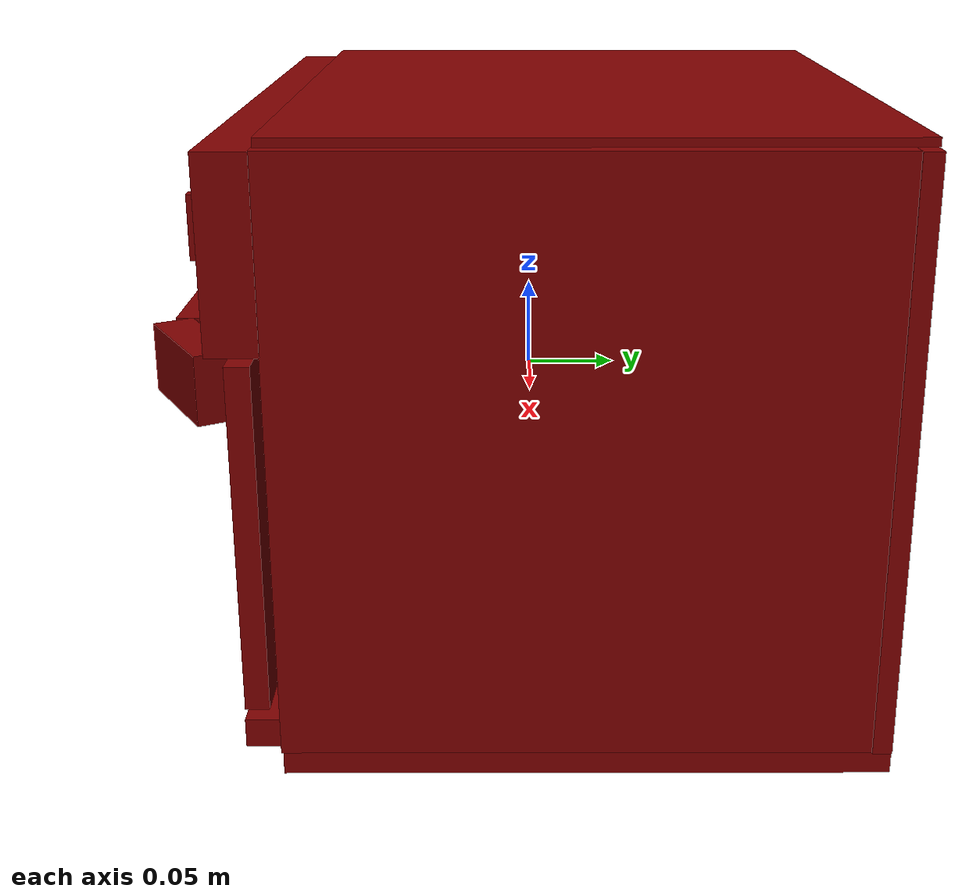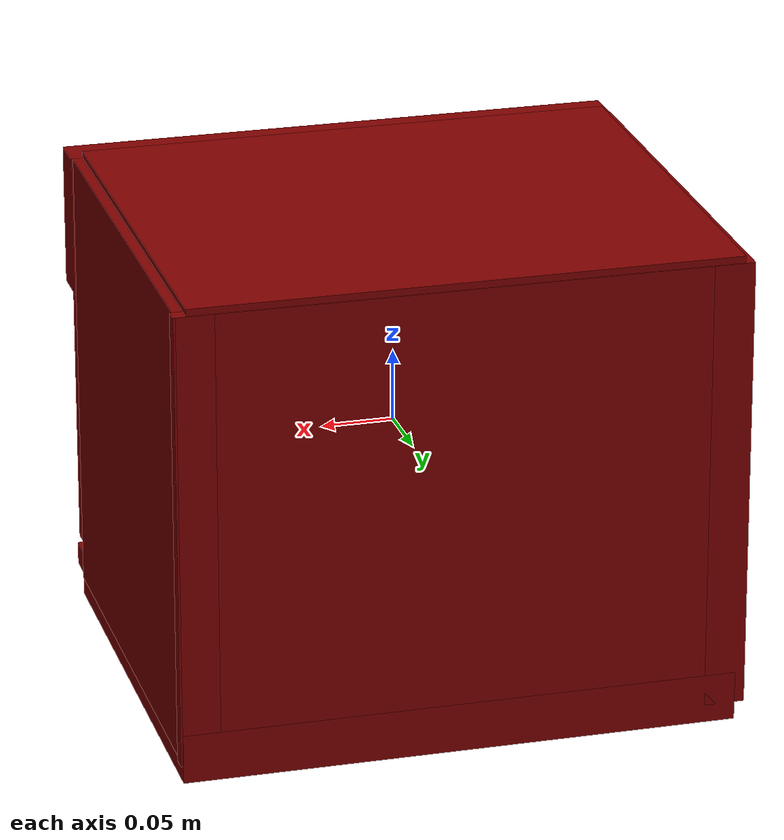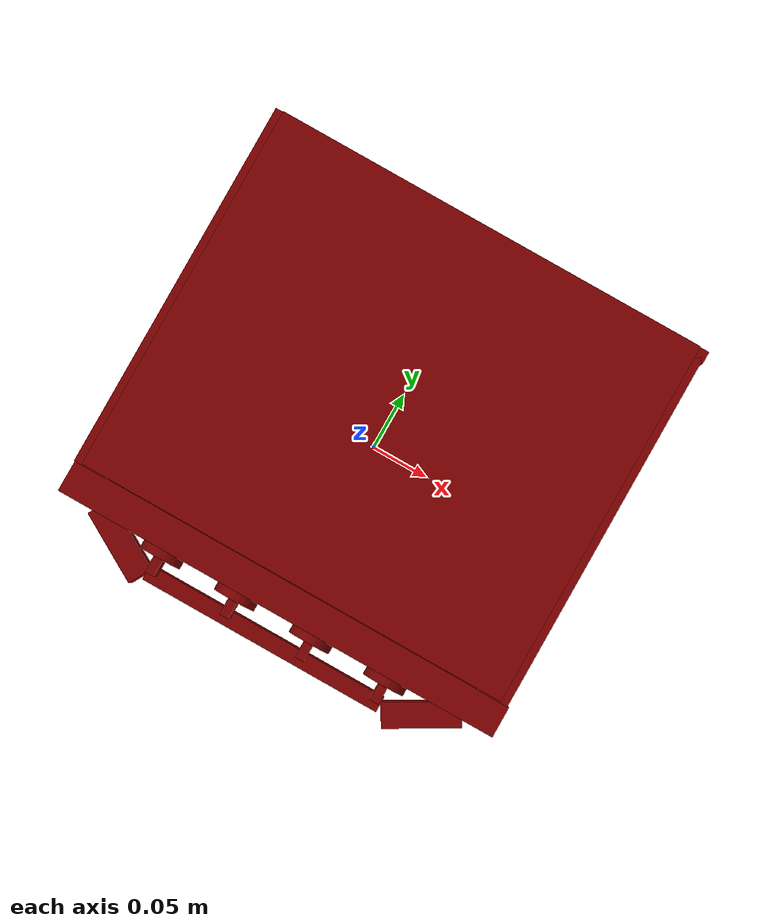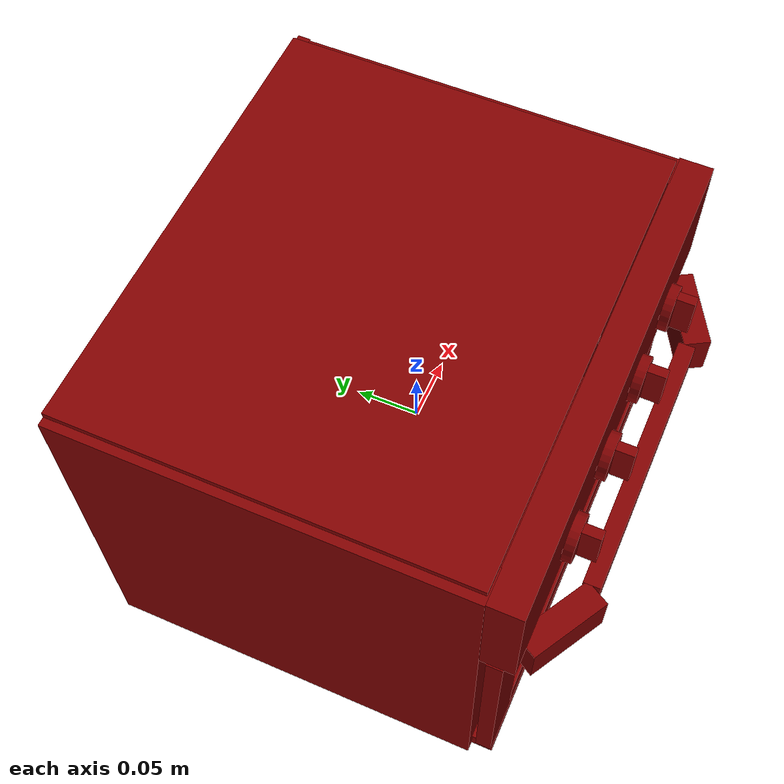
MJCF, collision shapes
<?xml version='1.0' encoding='UTF-8'?>
<mujoco model="model">
  <option timestep="0.002" gravity="0.0 0.0 -9.81"/>
  <compiler angle="radian"/>
  <asset>
    <mesh file="visuals/door.obj" name="door_vis"/>
    <mesh file="visuals/knob_doneness.obj" name="knob_doneness_vis"/>
    <mesh file="visuals/knob_function.obj" name="knob_function_vis"/>
    <mesh file="visuals/knob_temp.obj" name="knob_temp_vis"/>
    <mesh file="visuals/knob_time.obj" name="knob_time_vis"/>
    <mesh file="visuals/rack0.obj" name="rack0_vis"/>
    <mesh file="visuals/Body001.obj" name="Body001_vis"/>
    <mesh file="visuals/window.obj" name="window_vis"/>
    <texture file="visuals/T_BC001.png" name="Body001_material" type="2d"/>
    <material name="Body001_material" rgba="1 1 1 1.0" texture="Body001_material" shininess="0.241421377658844" specular="2"/>
    <texture file="visuals/T_BC001.png" name="door_material" type="2d"/>
    <material name="door_material" rgba="1 1 1 1.0" texture="door_material" shininess="0.141421377658844" specular="0.8"/>
    <material name="window_material" rgba="0.28266844153404236 0.28266844153404236 0.28266844153404236 0.699999988079071" shininess="0.5176590085029602" specular="0.3103448502657381"/>
    <texture file="visuals/T_BC001.png" name="knob_doneness_material" type="2d"/>
    <material name="knob_doneness_material" rgba="1 1 1 1.0" texture="knob_doneness_material" shininess="0.141421377658844" specular="0.3103448502657381"/>
    <texture file="visuals/T_BC001.png" name="knob_function_material" type="2d"/>
    <material name="knob_function_material" rgba="1 1 1 1.0" texture="knob_function_material" shininess="0.141421377658844" specular="0.3103448502657381"/>
    <texture file="visuals/T_BC001.png" name="knob_temp_material" type="2d"/>
    <material name="knob_temp_material" rgba="1 1 1 1.0" texture="knob_temp_material" shininess="0.141421377658844" specular="0.3103448502657381"/>
    <texture file="visuals/T_BC001.png" name="knob_time_material" type="2d"/>
    <material name="knob_time_material" rgba="1 1 1 1.0" texture="knob_time_material" shininess="0.141421377658844" specular="0.3103448502657381"/>
    <texture file="visuals/T_BC001.png" name="rack0_material" type="2d"/>
    <material name="rack0_material" rgba="1 1 1 1.0" texture="rack0_material" shininess="0.141421377658844" specular="0.3103448502657381"/>
  </asset>
  <default>
    <default class="visual">
      <geom conaffinity="0" contype="0" group="1" type="mesh"/>
    </default>
    <default class="collision">
      <geom group="0" rgba="0.5 0 0 0.5"/>
    </default>
    <default class="spawn">
      <geom group="0" rgba="1 1 1 0.5" contype="0" conaffinity="0"/>
      <site group="0" rgba="1 1 1 0.5"/>
    </default>
    <default class="region">
      <geom group="1" conaffinity="0" contype="0" rgba="0 1 0 0"/>
    </default>
  </default>
  <worldbody>
    <body>
      <body name="object">
        <geom mesh="Body001_vis" type="mesh" solimp="0.998 0.998 0.001" solref="0.001 1" friction="0.95 0.3 0.1" class="visual" material="Body001_material"/>
        <geom class="collision" type="box" pos="-0.00028474 0.02901746 0.16449785" size="0.18516673147678375 0.1568266600370407 0.002282035769894719" quat="1.0 0.0 0.0 0.0"/>
        <geom class="collision" type="box" pos="0.00380026 0.18074097 0.00575932" size="0.18925167620182037 0.005102730821818113 0.15594731271266937" quat="1.0 0.0 0.0 0.0"/>
        <geom class="collision" type="box" pos="-0.17825736 0.02847343 0.00575932" size="0.013867438770830631 0.1573706865310669 0.15594728291034698" quat="1.0 0.0 0.0 0.0"/>
        <geom class="collision" type="box" pos="0.17881460 0.02847343 0.00575932" size="0.012715711258351803 0.1573706567287445 0.1559472531080246" quat="1.0 0.0 0.0 0.0"/>
        <geom class="collision" type="box" pos="0.00291143 0.02898374 -0.14554366" size="0.18836267292499542 0.1568603515625 0.016933241859078407" quat="1.0 0.0 0.0 0.0"/>
        <geom class="collision" type="box" pos="0.00077400 -0.14165392 0.11288861" size="0.19217965006828308 0.013198900036513805 0.04881777614355087" quat="1.0 0.0 0.0 0.0"/>
        <geom class="collision" type="box" pos="0.00291143 -0.13772985 -0.13875678" size="0.18836256861686707 0.008808239363133907 0.007798697799444199" quat="1.0 0.0 0.0 0.0"/>
        <geom class="collision" type="box" pos="0.16464502 -0.06125135 -0.04518594" size="0.005745991133153439 0.042726825922727585 0.02104104496538639" quat="1.0 0.0 0.0 0.0"/>
        <geom class="collision" type="box" pos="0.16464502 0.10782969 -0.04518594" size="0.005745991133153439 0.042726825922727585 0.02104104496538639" quat="1.0 0.0 0.0 0.0"/>
        <geom class="collision" type="box" pos="0.16464502 -0.06125135 -0.08038233" size="0.005745991133153439 0.042726825922727585 0.014774486422538757" quat="1.0 0.0 0.0 0.0"/>
        <geom class="collision" type="box" pos="0.16464502 0.10782969 -0.08038233" size="0.005745991133153439 0.042726825922727585 0.014774486422538757" quat="1.0 0.0 0.0 0.0"/>
        <geom class="collision" type="box" pos="-0.16372362 -0.06125135 -0.04518594" size="0.005745991133153439 0.042726825922727585 0.02104104496538639" quat="1.0 0.0 0.0 0.0"/>
        <geom class="collision" type="box" pos="-0.16372362 0.10782969 -0.04518594" size="0.005745991133153439 0.042726825922727585 0.02104104496538639" quat="1.0 0.0 0.0 0.0"/>
        <geom class="collision" type="box" pos="-0.16372362 -0.06125135 -0.08032660" size="0.005745991133153439 0.042726825922727585 0.014830220490694046" quat="1.0 0.0 0.0 0.0"/>
        <geom class="collision" type="box" pos="-0.16372362 0.10782969 -0.08032660" size="0.005745991133153439 0.042726825922727585 0.014830220490694046" quat="1.0 0.0 0.0 0.0"/>
        <body name="door">
          <joint axis="1.0 0.0 0.0" pos="0.00000760 -0.14577573 -0.12396697" limited="true" name="door_joint" range="0.0 1.3707963267948966" type="hinge" damping="1" frictionloss="1" armature=".01" stiffness="0.5" springref="-0.4"/>
          <geom mesh="door_vis" type="mesh" solimp="0.998 0.998 0.001" solref="0.001 1" friction="0.95 0.3 0.1" class="visual" material="door_material"/>
          <geom class="collision" type="box" pos="-0.00058074 -0.13654718 -0.03407574" size="0.18020641803741455 0.0009615147137083113 0.08959095180034637" quat="1.0 0.0 0.0 0.0" name="door_main"/>
          <geom class="collision" type="box" pos="-0.17014954 -0.14008705 -0.03334112" size="0.02061697468161583 0.006325213238596916 0.09211733192205429" quat="1.0 0.0 0.0 0.0"/>
          <geom class="collision" type="box" pos="0.16924809 -0.14008705 -0.03334112" size="0.020616954192519188 0.006325202994048595 0.09211716800928116" quat="1.0 0.0 0.0 0.0"/>
          <geom class="collision" type="box" pos="-0.00173007 -0.14008705 -0.11236557" size="0.1487315446138382 0.006325192749500275 0.013090367428958416" quat="1.0 0.0 0.0 0.0"/>
          <geom class="collision" type="box" pos="-0.00173007 -0.14008705 0.04089682" size="0.14873138070106506 0.006325182504951954 0.01806376501917839" quat="1.0 0.0 0.0 0.0"/>
          <geom class="collision" type="box" pos="0.14089827 -0.17069451 0.04089682" size="0.03257526829838753 0.010653190314769745 0.018063468858599663" quat="0.9660395979881287 0.0 0.0 0.2583940923213959"/>
          <geom class="collision" type="box" pos="-0.13978286 -0.16919714 0.04089682" size="0.03257526829838753 0.010653190314769745 0.018063468858599663" quat="0.9660395979881287 0.0 -0.0 -0.2583940923213959"/>
          <geom class="collision" type="box" pos="-0.00030363 -0.17988838 0.04089682" size="0.10825955122709274 0.006666317582130432 0.01806374453008175" quat="1.0 0.0 0.0 0.0" name="door_handle_main"/>
          <body name="window">
            <geom mesh="window_vis" type="mesh" solimp="0.998 0.998 0.001" solref="0.001 1" friction="0.95 0.3 0.1" class="visual" material="window_material"/>
            <geom class="collision" type="box" pos="-0.00058074 -0.13654718 -0.03907017" size="0.15231934189796448 0.0009615157032385468 0.06301632523536682" quat="1.0 0.0 0.0 0.0"/>
          </body>
        </body>
        <body name="knob_doneness">
          <joint axis="0.0 1.0 0.0" pos="-0.10130975 -0.16517177 0.10686838" limited="true" name="knob_doneness_joint" range="0.0 4.71238898038469" type="hinge" damping="0.05" frictionloss="0.75" armature="1"/>
          <geom mesh="knob_doneness_vis" type="mesh" solimp="0.998 0.998 0.001" solref="0.001 1" friction="0.95 0.3 0.1" class="visual" material="knob_doneness_material"/>
          <geom class="collision" type="cylinder" pos="-0.10119713 -0.15947936 0.10690982" size="0.017945503816008568 0.003762940876185894" quat="0.7071067094802856 0.7071068286895752 0.0 0.0" friction="100 0.5 0.01"/>
          <geom class="collision" type="box" pos="-0.10102850 -0.17052291 0.10681921" size="0.003955420106649399 0.007150416262447834 0.017602942883968353" quat="1.0 0.0 0.0 0.0" name="knob_doneness_main" friction="100 0.5 0.01"/>
        </body>
        <body name="knob_function">
          <joint axis="0.0 1.0 0.0" pos="-0.03378345 -0.16517177 0.10686824" limited="true" name="knob_function_joint" range="0.0 3.490658503988659" type="hinge" damping="0.05" armature="1" frictionloss="0.75"/>
          <geom mesh="knob_function_vis" type="mesh" solimp="0.998 0.998 0.001" solref="0.001 1" friction="0.95 0.3 0.1" class="visual" material="knob_function_material"/>
          <geom class="collision" type="cylinder" pos="-0.03403757 -0.15947936 0.10690982" size="0.017945503816008568 0.003762940876185894" quat="0.7071067094802856 0.7071068286895752 0.0 0.0" friction="100 0.5 0.01"/>
          <geom class="collision" type="box" pos="-0.03386893 -0.17052291 0.10681921" size="0.003955420572310686 0.007150416262447834 0.017602944746613503" quat="1.0 0.0 0.0 0.0" name="knob_function_main" friction="100 0.5 0.01"/>
        </body>
        <body name="knob_temp">
          <joint axis="0.0 1.0 0.0" pos="0.03375029 -0.16517180 0.10686838" limited="true" name="knob_temp_joint" range="0.0 4.886921905584122" type="hinge" damping="0.05" frictionloss="0.75" armature="1"/>
          <geom mesh="knob_temp_vis" type="mesh" solimp="0.998 0.998 0.001" solref="0.001 1" friction="0.95 0.3 0.1" class="visual" material="knob_temp_material"/>
          <geom class="collision" type="cylinder" pos="0.03392158 -0.15947936 0.10690982" size="0.017945503816008568 0.003762940876185894" quat="0.7071067094802856 0.7071068286895752 0.0 0.0" friction="100 0.5 0.01"/>
          <geom class="collision" type="box" pos="0.03409023 -0.17052291 0.10681921" size="0.003955420106649399 0.007150416262447834 0.017602942883968353" quat="1.0 0.0 0.0 0.0" name="knob_temp_main" friction="100 0.5 0.01"/>
        </body>
        <body name="knob_time">
          <joint axis="0.0 1.0 0.0" pos="0.10126131 -0.16517180 0.10686824" limited="true" name="knob_time_joint" range="0.0 5.096361415823442" type="hinge" damping="0.05" armature="1" frictionloss="0.75"/>
          <geom mesh="knob_time_vis" type="mesh" solimp="0.998 0.998 0.001" solref="0.001 1" friction="0.95 0.3 0.1" class="visual" material="knob_time_material"/>
          <geom class="collision" type="cylinder" pos="0.10108114 -0.15947936 0.10690982" size="0.017945503816008568 0.003762940876185894" quat="0.7071067094802856 0.7071068286895752 0.0 0.0" friction="100 0.5 0.01"/>
          <geom class="collision" type="box" pos="0.10124978 -0.17052291 0.10681921" size="0.003955420106649399 0.007150416262447834 0.017602942883968353" quat="1.0 0.0 0.0 0.0" name="knob_time_main" friction="100 0.5 0.01"/>
        </body>
        <body name="rack0">
          <geom class="region" name="reg_rack0" type="box" pos="2.804499999999044e-05 0.026805685000000003 0.060296455" size="0.128789155 0.111858385 0.102053855"/>
          <joint axis="0.0 -1.0 0.0" pos="-0.00000708 0.02309215 -0.03930424" limited="true" name="rack0_joint" range="0.0 0.22" type="slide" damping="1" frictionloss="1" armature=".01" stiffness="0.05"/>
          <geom mesh="rack0_vis" type="mesh" solimp="0.998 0.998 0.001" solref="0.001 1" friction="0.95 0.3 0.1" class="visual" material="rack0_material"/>
          <geom class="collision" type="box" pos="-0.16113232 0.02256004 -0.02005357" size="0.0017678566509857774 0.09989279508590698 0.0025366018526256084" quat="1.0 0.0 0.0 0.0"/>
          <geom class="collision" type="box" pos="-0.00087631 0.02321631 -0.04545244" size="0.13221736252307892 0.120155930519104 0.004409009125083685" quat="1.0 0.0 0.0 0.0"/>
          <geom class="collision" type="box" pos="-0.15439312 0.13499910 -0.02076729" size="0.0028640320524573326 0.010595914907753468 0.0018228644039481878" quat="0.9250975847244263 0.0 -0.0 -0.3797295093536377"/>
          <geom class="collision" type="box" pos="-0.13944870 0.14060769 -0.03195671" size="0.0021842983551323414 0.010595916770398617 0.002235878724604845" quat="0.42208170890808105 0.6446525454521179 -0.5332596302032471 -0.3491479456424713"/>
          <geom class="collision" type="box" pos="-0.13944870 -0.09436954 -0.03195671" size="0.0021842976566404104 0.010595913045108318 0.002235878026112914" quat="0.42208191752433777 -0.6446525454521179 -0.5332594513893127 0.3491479456424713"/>
          <geom class="collision" type="box" pos="-0.15224683 -0.09103442 -0.02076729" size="0.0031949582044035196 0.010595915839076042 0.0018228644039481878" quat="0.423305481672287 0.0 -0.0 -0.905987024307251"/>
          <geom class="collision" type="box" pos="0.15397626 -0.08635093 -0.02076729" size="0.004080499988049269 0.010595916770398617 0.0018228644039481878" quat="0.8873757123947144 0.0 -0.0 -0.46104705333709717"/>
          <geom class="collision" type="box" pos="0.13956833 -0.09436954 -0.03195671" size="0.0021842981223016977 0.010595916770398617 0.002235878026112914" quat="0.4220818877220154 -0.6446525454521179 0.5332595109939575 -0.3491479456424713"/>
          <geom class="collision" type="box" pos="0.13956833 0.14060769 -0.03195671" size="0.0021842983551323414 0.010595916770398617 0.002235878724604845" quat="0.42208170890808105 0.6446525454521179 0.5332596302032471 0.3491479456424713"/>
          <geom class="collision" type="box" pos="0.15397626 0.13258909 -0.02076729" size="0.004080499988049269 0.010595916770398617 0.0018228644039481878" quat="0.8873757123947144 0.0 0.0 0.46104705333709717"/>
          <geom class="collision" type="box" pos="0.16253403 0.02256004 -0.02005357" size="0.002606209833174944 0.0998925268650055 0.0025365976616740227" quat="1.0 0.0 0.0 0.0"/>
        </body>
        <geom class="region" name="reg_main" type="box" pos="2.000000000335067e-08 0.012781064999999994 -3.5999999999092314e-07" size="0.19904286999999998 0.17406281499999998 0.16778047000000001"/>
      </body>
    </body>
  </worldbody>
  <actuator>
    <motor name="door_joint_actuator" joint="door_joint" gear="20"/>
    <motor name="knob_doneness_joint_actuator" joint="knob_doneness_joint" gear="10"/>
    <motor name="knob_function_joint_actuator" joint="knob_function_joint" gear="10"/>
    <motor name="knob_temp_joint_actuator" joint="knob_temp_joint" gear="10"/>
    <motor name="knob_time_joint_actuator" joint="knob_time_joint" gear="10"/>
    <motor name="rack0_joint_actuator" joint="rack0_joint" gear="30"/>
  </actuator>
</mujoco>
